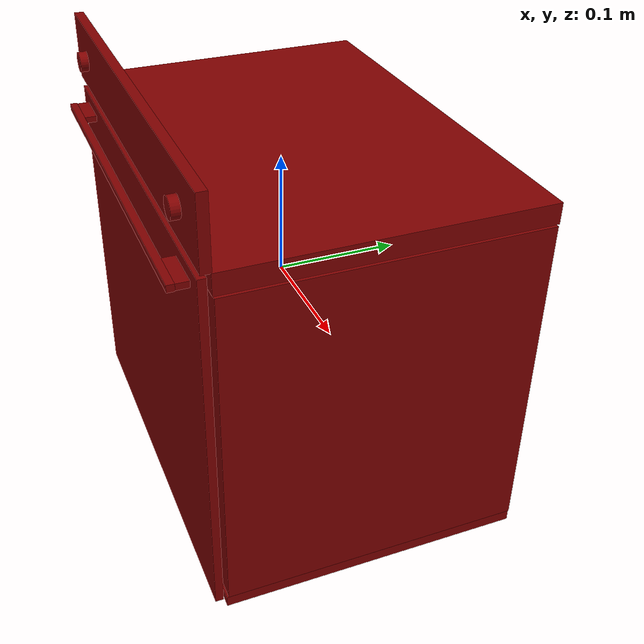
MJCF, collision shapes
<mujoco model="model">
  <compiler angle="radian"/>
  <asset>
    <mesh file="visuals/Body001.obj" name="Body001_vis"/>
    <mesh file="visuals/Door001.obj" name="Door001_vis"/>
    <mesh file="visuals/Door001_Clear.obj" name="Door001_Clear_vis"/>
    <mesh file="visuals/Knob001.obj" name="Knob001_vis"/>
    <mesh file="visuals/Knob002.obj" name="Knob002_vis"/>
    <mesh file="visuals/Shelf001.obj" name="Shelf001_vis"/>
    <texture file="visuals/T_BC001.png" name="Body001_material" type="2d"/>
    <material name="Body001_material" rgba="1 1 1 1.0" texture="Body001_material" shininess="0.4472135901451111" specular="0.3103448502657381"/>
    <texture file="visuals/T_BC001.png" name="Door001_material" type="2d"/>
    <material name="Door001_material" rgba="1 1 1 1.0" texture="Door001_material" shininess="0.4472135901451111" specular="0.3103448502657381"/>
    <material name="Door001_Clear_material" rgba="0.0984579548239708 0.0984579548239708 0.0984579548239708 0.8999999761581421" shininess="0.4472135901451111" specular="0.3103448502657381"/>
    <texture file="visuals/T_BC001.png" name="Knob001_material" type="2d"/>
    <material name="Knob001_material" rgba="1 1 1 1.0" texture="Knob001_material" shininess="0.4472135901451111" specular="0.3103448502657381"/>
    <texture file="visuals/T_BC001.png" name="Knob002_material" type="2d"/>
    <material name="Knob002_material" rgba="1 1 1 1.0" texture="Knob002_material" shininess="0.4472135901451111" specular="0.3103448502657381"/>
    <texture file="visuals/T_BC001.png" name="Shelf001_material" type="2d"/>
    <material name="Shelf001_material" rgba="1 1 1 1.0" texture="Shelf001_material" shininess="0.4472135901451111" specular="0.3103448502657381"/>
  </asset>
  <default>
    <default class="visual">
      <geom conaffinity="0" contype="0" group="1" type="mesh"/>
    </default>
    <default class="collision">
      <geom group="0" rgba="0.5 0 0 0.5"/>
    </default>
    <default class="spawn">
      <geom group="0" rgba="1 1 1 0.5" contype="0" conaffinity="0"/>
      <site group="0" rgba="1 1 1 0.5"/>
    </default>
    <default class="region">
      <geom group="1" conaffinity="0" contype="0" rgba="0 1 0 0"/>
    </default>
  </default>
  <worldbody>
    <body>
      <body name="object">
        <geom mesh="Body001_vis" type="mesh" solimp="0.998 0.998 0.001" solref="0.001 1" density="100" friction="0.95 0.3 0.1" class="visual" material="Body001_material"/>
        <geom class="collision" type="box" pos="0.162940 0.011092 -0.029620" size="0.011354639194905758 0.12026280909776688 0.13280409574508667" quat="1.0 0.0 0.0 0.0"/>
        <geom class="collision" type="box" pos="-0.000385 0.011206 -0.169547" size="0.17277878522872925 0.1211426705121994 0.004480005707591772" quat="1.0 0.0 0.0 0.0"/>
        <geom class="collision" type="box" pos="-0.001313 0.118752 -0.028079" size="0.15190033614635468 0.013494850136339664 0.1364910900592804" quat="1.0 0.0 0.0 0.0"/>
        <geom class="collision" type="box" pos="-0.000971 -0.112948 0.146892" size="0.1733236461877823 0.003841336350888014 0.027135569602251053" quat="1.0 0.0 0.0 0.0"/>
        <geom class="collision" type="box" pos="-0.000028 0.011184 0.112452" size="0.17352010309696198 0.12128693610429764 0.00812334194779396" quat="1.0 0.0 0.0 0.0"/>
        <geom class="collision" type="box" pos="-0.163158 0.010880 -0.031966" size="0.010247859172523022 0.12047488242387772 0.13294851779937744" quat="1.0 0.0 0.0 0.0"/>
        <geom class="collision" type="box" pos="-0.147026 0.002409 0.010675" size="0.005727461073547602 0.09813316911458969 0.011798607185482979" quat="1.0 0.0 0.0 0.0"/>
        <geom class="collision" type="box" pos="-0.146831 0.002409 -0.033644" size="0.005922774784266949 0.09813316911458969 0.011798607185482979" quat="1.0 0.0 0.0 0.0"/>
        <geom class="collision" type="box" pos="-0.146831 0.002409 -0.083295" size="0.005922774784266949 0.09813316911458969 0.011063696816563606" quat="1.0 0.0 0.0 0.0"/>
        <geom class="collision" type="box" pos="-0.146736 0.006226 0.038257" size="0.006017350126057863 0.09431646019220352 0.005485036876052618" quat="1.0 0.0 0.0 0.0"/>
        <geom class="collision" type="box" pos="-0.146736 0.006226 -0.106217" size="0.006017350126057863 0.09431646019220352 0.005485036876052618" quat="1.0 0.0 0.0 0.0"/>
        <geom class="collision" type="box" pos="0.146080 0.006226 -0.106217" size="0.006017350126057863 0.09431646019220352 0.005485036876052618" quat="1.0 0.0 0.0 0.0"/>
        <geom class="collision" type="box" pos="0.145282 0.006226 0.038257" size="0.006017350126057863 0.09431646019220352 0.005485036876052618" quat="1.0 0.0 0.0 0.0"/>
        <geom class="collision" type="box" pos="0.145986 0.002409 -0.083367" size="0.005922774784266949 0.09813316911458969 0.010991829447448254" quat="1.0 0.0 0.0 0.0"/>
        <geom class="collision" type="box" pos="0.145986 0.002409 -0.033644" size="0.005922774784266949 0.09813316911458969 0.011798607185482979" quat="1.0 0.0 0.0 0.0"/>
        <geom class="collision" type="box" pos="0.145790 0.002409 0.010675" size="0.005727461073547602 0.09813316911458969 0.011798607185482979" quat="1.0 0.0 0.0 0.0"/>
        <body name="Door001">
          <joint axis="1.0 0.0 0.0" pos="-0.000686 -0.113907 -0.171448" limited="true" name="Door001_joint" range="0.0 1.15" type="hinge" damping="5" frictionloss="1" armature=".01" stiffness="0.05" springref="-1"/>
          <geom mesh="Door001_vis" type="mesh" solimp="0.998 0.998 0.001" solref="0.001 1" density="100" friction="0.95 0.3 0.1" class="visual" material="Door001_material"/>
          <geom class="collision" type="box" pos="-0.000120 -0.114033 -0.029923" size="0.16635046899318695 0.003141240682452917 0.14336103200912476" quat="1.0 0.0 0.0 0.0"/>
          <geom class="collision" type="box" pos="-0.136093 -0.122222 0.101514" size="0.016108840703964233 0.005718639120459557 0.0024276322219520807" quat="1.0 0.0 0.0 0.0"/>
          <geom class="collision" type="box" pos="-0.001203 -0.129608 0.101365" size="0.15231122076511383 0.002863706788048148 0.0027365772984921932" quat="1.0 0.0 0.0 0.0"/>
          <geom class="collision" type="box" pos="0.134969 -0.122222 0.101514" size="0.016108840703964233 0.005718639120459557 0.0024276322219520807" quat="1.0 0.0 0.0 0.0"/>
          <body name="Door001_Clear">
            <geom mesh="Door001_Clear_vis" type="mesh" solimp="0.998 0.998 0.001" solref="0.001 1" density="100" friction="0.95 0.3 0.1" class="visual" material="Door001_Clear_material"/>
            <geom class="collision" type="box" pos="-0.000093 -0.116267 -0.026202" size="0.12787312269210815 0.0007702454458922148 0.1061340942978859" quat="1.0 0.0 0.0 0.0"/>
          </body>
        </body>
        <body name="Knob001">
          <joint axis="0.0 1.0 0.0" pos="0.133999 -0.119968 0.146702" limited="true" name="Knob001_joint" range="0.0 3.141592653589793" type="hinge" damping="0.05" armature="0.001" springref="-0.01"/>
          <geom mesh="Knob001_vis" type="mesh" solimp="0.998 0.998 0.001" solref="0.001 1" density="100" friction="0.95 0.3 0.1" class="visual" material="Knob001_material"/>
          <geom class="collision" type="cylinder" pos="0.133990 -0.120654 0.146685" size="0.007977981120347977 0.0033065916504710913" quat="0.7071067094802856 0.7071068286895752 0.0 0.0"/>
        </body>
        <body name="Knob002">
          <joint axis="0.0 1.0 0.0" pos="-0.133424 -0.119968 0.146253" limited="true" name="Knob002_joint" range="0.0 3.9444441095071845" type="hinge" damping="0.05" armature="0.001" springref="-0.01"/>
          <geom mesh="Knob002_vis" type="mesh" solimp="0.998 0.998 0.001" solref="0.001 1" density="100" friction="0.95 0.3 0.1" class="visual" material="Knob002_material"/>
          <geom class="collision" type="cylinder" pos="-0.133382 -0.120654 0.146271" size="0.007977981120347977 0.0033065916504710913" quat="0.7071067094802856 0.7071068286895752 0.0 0.0"/>
        </body>
        <body name="Shelf001">
          <joint axis="0.0 -1.0 0.0" pos="-0.002540 0.001536 -0.067507" limited="true" name="Shelf001_joint" range="0.0 0.15" type="slide" damping="1" frictionloss="1" armature=".01" stiffness="0.05"/>
          <geom mesh="Shelf001_vis" type="mesh" solimp="0.998 0.998 0.001" solref="0.001 1" density="100" friction="0.95 0.3 0.1" class="visual" material="Shelf001_material"/>
          <geom class="collision" type="box" pos="-0.002425 0.001667 -0.067223" size="0.1484391838312149 0.08553176373243332 0.002767468336969614" quat="1.0 0.0 0.0 0.0"/>
        </body>
        <geom class="region" name="reg_main" type="box" pos="-0.0005530000000000118 0.006079499999999995 0.00011849999999999361" size="0.172639 0.1250195 0.1730895"/>
        <geom class="region" name="reg_int" type="box" pos="-0.002629499999999993 -0.002647499999999997 -0.029025000000000002" size="0.1530015 0.1041955 0.13636500000000001"/>
      </body>
    </body>
  </worldbody>
  <actuator>
    <motor name="Door001_joint_actuator" joint="Door001_joint" gear="50"/>
    <motor name="Knob001_joint_actuator" joint="Knob001_joint" gear="50"/>
    <motor name="Knob002_joint_actuator" joint="Knob002_joint" gear="50"/>
    <motor name="Shelf001_joint_actuator" joint="Shelf001_joint" gear="50"/>
  </actuator>
</mujoco>
